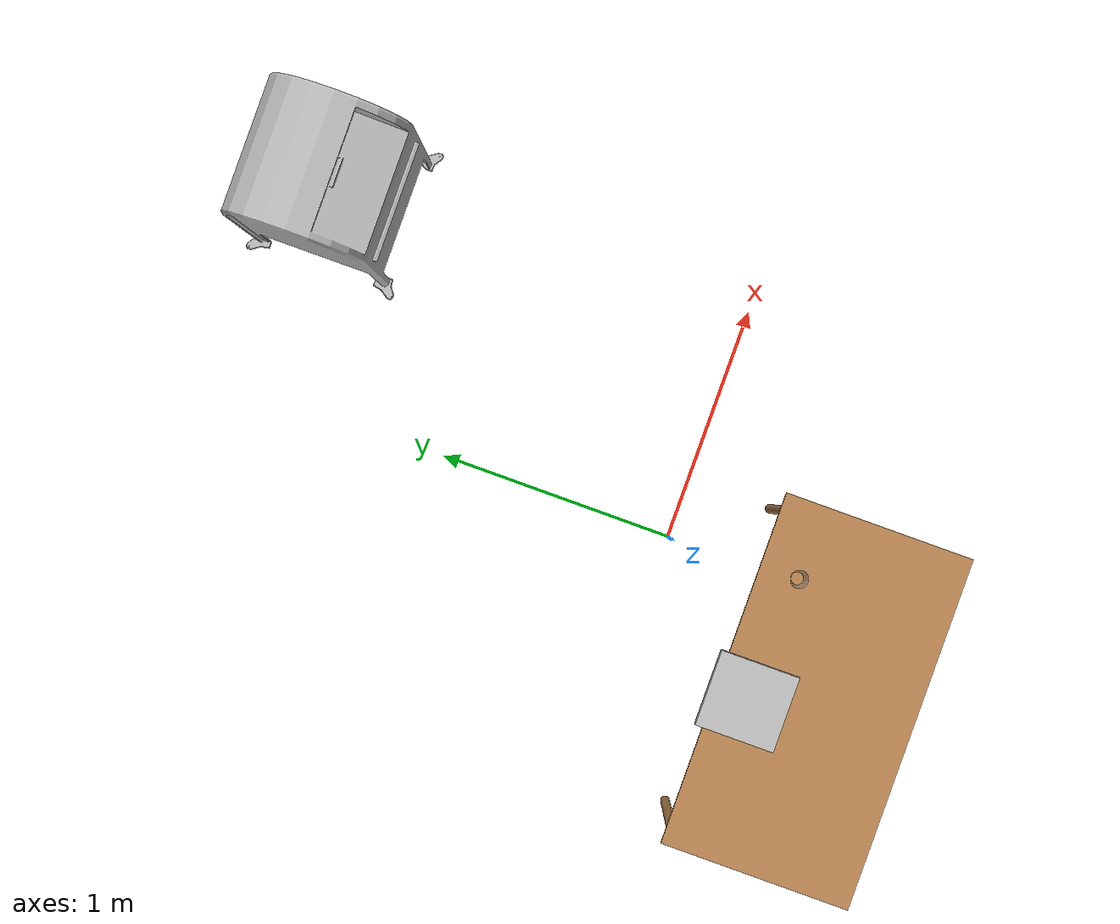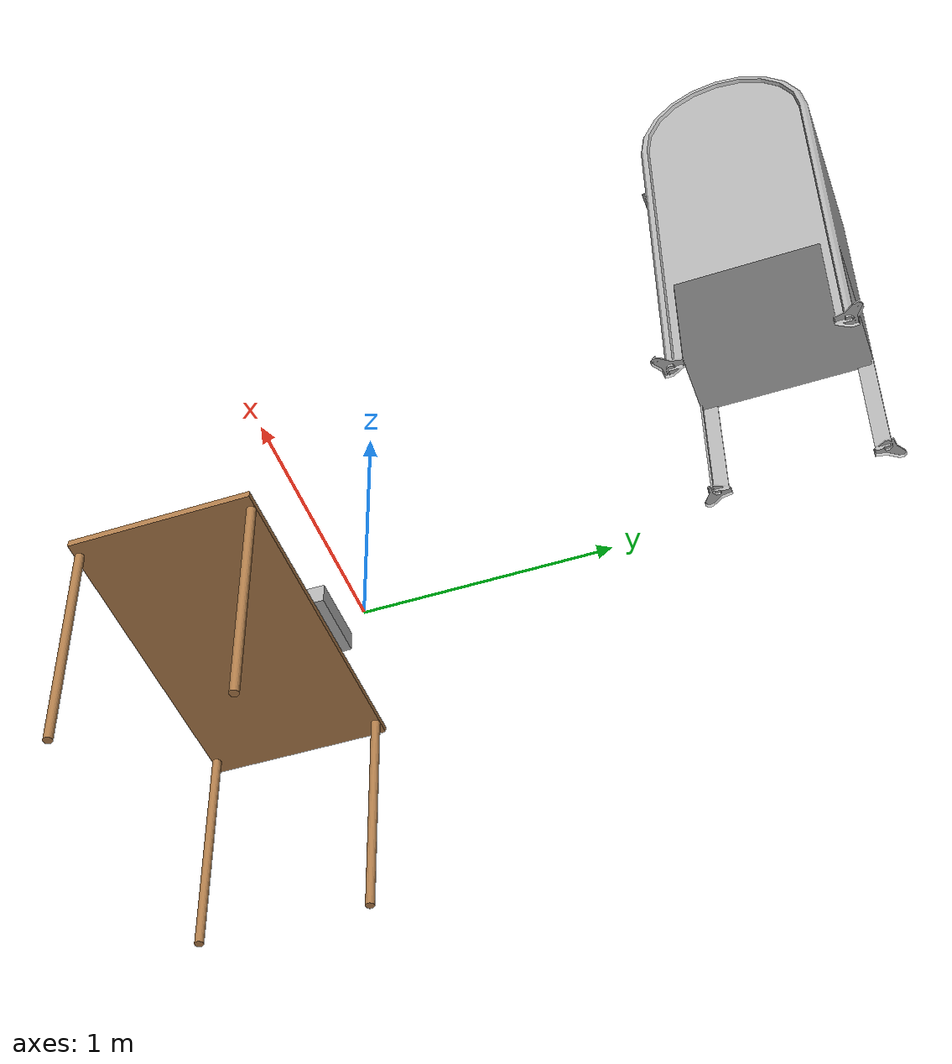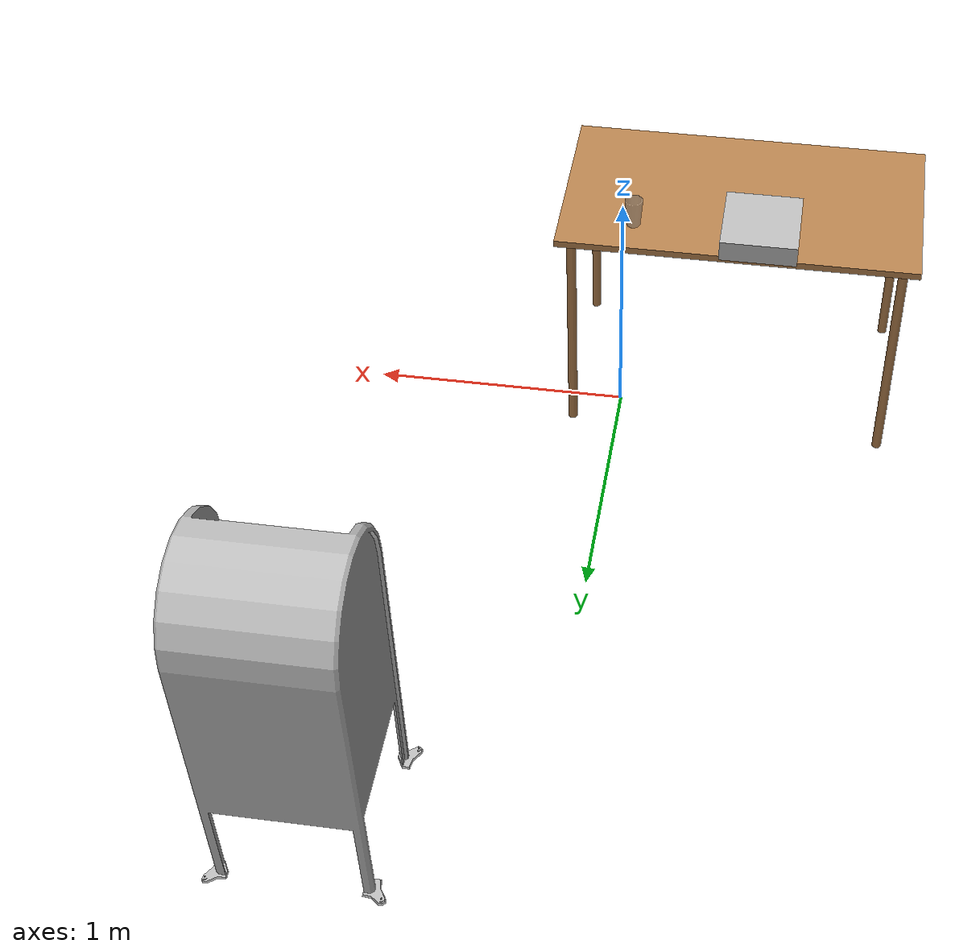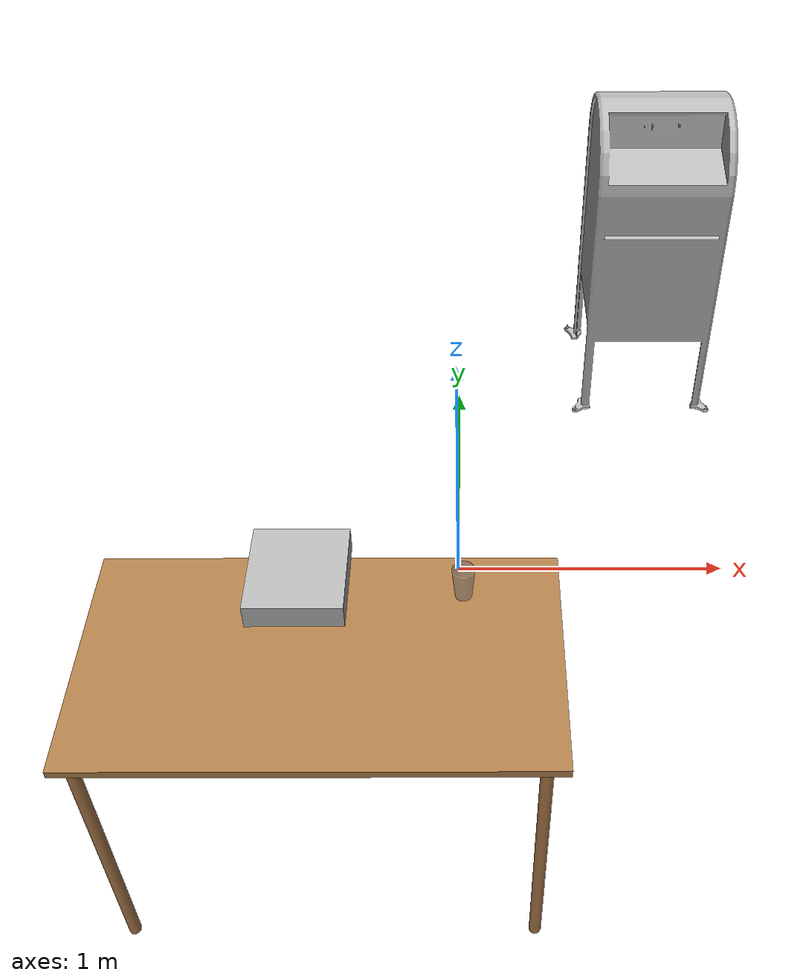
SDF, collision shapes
<?xml version='1.0'?>
<sdf version='1.6'>
  <model name='Building'>
    <model name='parrot_bebop_2'>
      <static>0</static>
      <pose frame=''>-0.503764 -0.503101 0.554535 0 -0 0</pose>
      <link name='body'>
        <inertial>
          <mass>0.503</mass>
          <inertia>
            <ixx>0.001805</ixx>
            <ixy>-8.619e-07</ixy>
            <iyy>0.001764</iyy>
            <ixz>1.555e-05</ixz>
            <iyz>3.595e-07</iyz>
            <izz>0.003328</izz>
          </inertia>
          <pose frame=''>0 0 0 0 -0 0</pose>
        </inertial>
        <collision name='collision'>
          <pose frame=''>-0.00424 0.00014 -0.00595 0 -0 0</pose>
          <geometry>
            <box>
              <size>0.316618 0.330564 0.089582</size>
            </box>
          </geometry>
          <max_contacts>10</max_contacts>
          <surface>
            <bounce>
              <restitution_coefficient>0.828</restitution_coefficient>
              <threshold>0</threshold>
            </bounce>
            <friction>
              <ode>
                <mu>10</mu>
                <mu2>5</mu2>
                <fdir1>0 0 0</fdir1>
                <slip1>0</slip1>
                <slip2>0</slip2>
              </ode>
            </friction>
            <contact>
              <ode>
                <kp>10000</kp>
                <kd>10</kd>
                <max_vel>0.01</max_vel>
                <min_depth>0</min_depth>
              </ode>
            </contact>
          </surface>
        </collision>
        <visual name='hull'>
          <geometry>
            <mesh>
              <uri>model://parrot_bebop_2/meshes/hull.dae</uri>
            </mesh>
          </geometry>
        </visual>
        <visual name='propeller_rr'>
          <pose frame=''>-0.09035 -0.11423 -0.00501 0 -0 0</pose>
          <geometry>
            <mesh>
              <uri>model://parrot_bebop_2/meshes/propeller_rr.dae</uri>
            </mesh>
          </geometry>
        </visual>
        <visual name='propeller_rl'>
          <pose frame=''>-0.09035 0.11452 -0.00501 0 -0 0</pose>
          <geometry>
            <mesh>
              <uri>model://parrot_bebop_2/meshes/propeller_rl.dae</uri>
            </mesh>
          </geometry>
        </visual>
        <visual name='propeller_fr'>
          <pose frame=''>0.08456 -0.11435 -0.00501 0 -0 0</pose>
          <geometry>
            <mesh>
              <uri>model://parrot_bebop_2/meshes/propeller_fr.dae</uri>
            </mesh>
          </geometry>
        </visual>
        <visual name='propeller_fl'>
          <pose frame=''>0.08456 0.11463 -0.00501 0 -0 0</pose>
          <geometry>
            <mesh>
              <uri>model://parrot_bebop_2/meshes/propeller_fl.dae</uri>
            </mesh>
          </geometry>
        </visual>
      </link>
    </model>
    <model name='plastic_cup'>
      <link name='link'>
        <pose frame=''>0 0 0.065 0 -0 0</pose>
        <inertial>
          <mass>0.0599</mass>
          <inertia>
            <ixx>0.000302896</ixx>
            <ixy>0</ixy>
            <ixz>0</ixz>
            <iyy>0.000302896</iyy>
            <iyz>0</iyz>
            <izz>3.28764e-05</izz>
          </inertia>
        </inertial>
        <collision name='collision'>
          <geometry>
            <mesh>
              <uri>model://plastic_cup/meshes/plastic_cup.dae</uri>
            </mesh>
          </geometry>
          <surface>
            <contact>
              <poissons_ratio>0.35</poissons_ratio>
              <elastic_modulus>3.10264e+09</elastic_modulus>
              <ode>
                <kp>100000</kp>
                <kd>100</kd>
                <max_vel>100</max_vel>
                <min_depth>0.001</min_depth>
              </ode>
            </contact>
            <friction>
              <torsional>
                <coefficient>1</coefficient>
                <use_patch_radius>0</use_patch_radius>
                <surface_radius>0.01</surface_radius>
              </torsional>
            </friction>
          </surface>
        </collision>
        <visual name='visual'>
          <geometry>
            <mesh>
              <uri>model://plastic_cup/meshes/plastic_cup.dae</uri>
            </mesh>
          </geometry>
          <material>
            <script>
              <uri>file://media/materials/scripts/gazebo.material</uri>
              <name>Gazebo/GreyTransparent</name>
            </script>
          </material>
        </visual>
      </link>
      <pose frame=''>0.020917 -0.538846 0.491845 0 -0 0</pose>
    </model>
    <model name='postbox'>
      <static>1</static>
      <link name='link'>
        <collision name='collision'>
          <geometry>
            <mesh>
              <uri>model://postbox/meshes/postbox.dae</uri>
            </mesh>
          </geometry>
        </collision>
        <visual name='visual'>
          <geometry>
            <mesh>
              <uri>model://postbox/meshes/postbox.dae</uri>
            </mesh>
          </geometry>
        </visual>
      </link>
      <pose frame=''>0.901192 1.81672 -0.523188 0 -0 0</pose>
    </model>
    <model name='table'>
      <static>0</static>
      <link name='link'>
        <collision name='surface'>
          <pose frame=''>0 0 1 0 -0 0</pose>
          <geometry>
            <box>
              <size>1.5 0.8 0.03</size>
            </box>
          </geometry>
          <surface>
            <friction>
              <ode>
                <mu>0.6</mu>
                <mu2>0.6</mu2>
              </ode>
            </friction>
          </surface>
        </collision>
        <visual name='visual1'>
          <pose frame=''>0 0 1 0 -0 0</pose>
          <geometry>
            <box>
              <size>1.4 0.8 0.04</size>
            </box>
          </geometry>
          <material>
            <script>
              <uri>file://media/materials/scripts/gazebo.material</uri>
              <name>Gazebo/Wood</name>
            </script>
          </material>
        </visual>
        <collision name='front_left_leg'>
          <pose frame=''>0.68 0.38 0.5 0 -0 0</pose>
          <geometry>
            <cylinder>
              <radius>0.02</radius>
              <length>1</length>
            </cylinder>
          </geometry>
        </collision>
        <visual name='front_left_leg'>
          <pose frame=''>0.68 0.38 0.5 0 -0 0</pose>
          <geometry>
            <cylinder>
              <radius>0.02</radius>
              <length>1</length>
            </cylinder>
          </geometry>
          <material>
            <script>
              <uri>file://media/materials/scripts/gazebo.material</uri>
              <name>Gazebo/Grey</name>
            </script>
          </material>
        </visual>
        <collision name='front_right_leg'>
          <pose frame=''>0.68 -0.38 0.5 0 -0 0</pose>
          <geometry>
            <cylinder>
              <radius>0.02</radius>
              <length>1</length>
            </cylinder>
          </geometry>
        </collision>
        <visual name='front_right_leg'>
          <pose frame=''>0.68 -0.38 0.5 0 -0 0</pose>
          <geometry>
            <cylinder>
              <radius>0.02</radius>
              <length>1</length>
            </cylinder>
          </geometry>
          <material>
            <script>
              <uri>file://media/materials/scripts/gazebo.material</uri>
              <name>Gazebo/Grey</name>
            </script>
          </material>
        </visual>
        <collision name='back_right_leg'>
          <pose frame=''>-0.68 -0.38 0.5 0 -0 0</pose>
          <geometry>
            <cylinder>
              <radius>0.02</radius>
              <length>1</length>
            </cylinder>
          </geometry>
        </collision>
        <visual name='back_right_leg'>
          <pose frame=''>-0.68 -0.38 0.5 0 -0 0</pose>
          <geometry>
            <cylinder>
              <radius>0.02</radius>
              <length>1</length>
            </cylinder>
          </geometry>
          <material>
            <script>
              <uri>file://media/materials/scripts/gazebo.material</uri>
              <name>Gazebo/Grey</name>
            </script>
          </material>
        </visual>
        <collision name='back_left_leg'>
          <pose frame=''>-0.68 0.38 0.5 0 -0 0</pose>
          <geometry>
            <cylinder>
              <radius>0.02</radius>
              <length>1</length>
            </cylinder>
          </geometry>
        </collision>
        <visual name='back_left_leg'>
          <pose frame=''>-0.68 0.38 0.5 0 -0 0</pose>
          <geometry>
            <cylinder>
              <radius>0.02</radius>
              <length>1</length>
            </cylinder>
          </geometry>
          <material>
            <script>
              <uri>file://media/materials/scripts/gazebo.material</uri>
              <name>Gazebo/Grey</name>
            </script>
          </material>
        </visual>
      </link>
      <pose frame=''>-0.418345 -0.774776 -0.523188 0 -0 0</pose>
    </model>
    <static>0</static>
    <allow_auto_disable>1</allow_auto_disable>
  </model>
</sdf>
